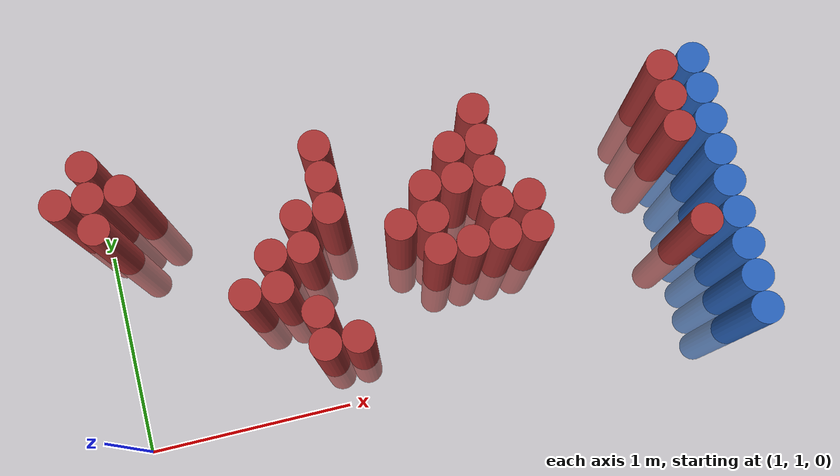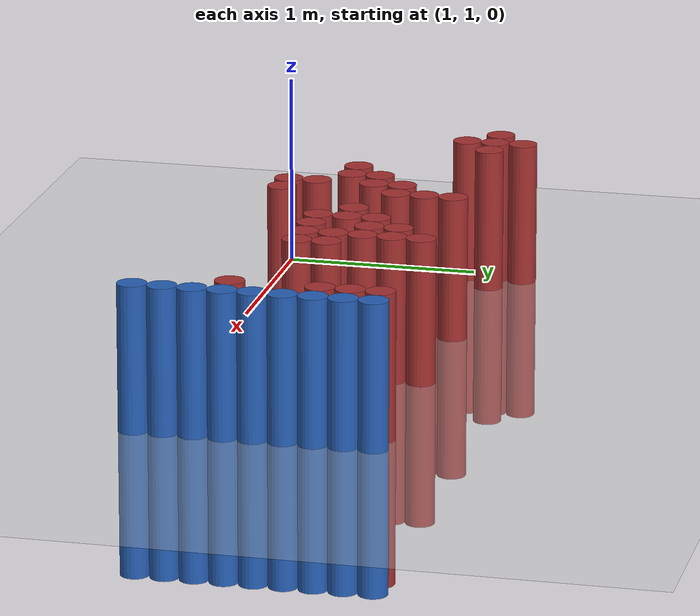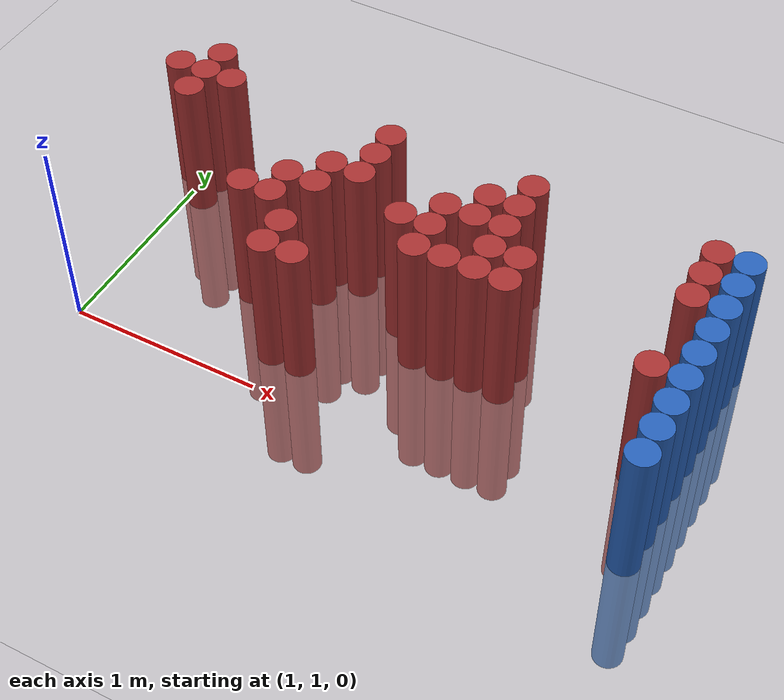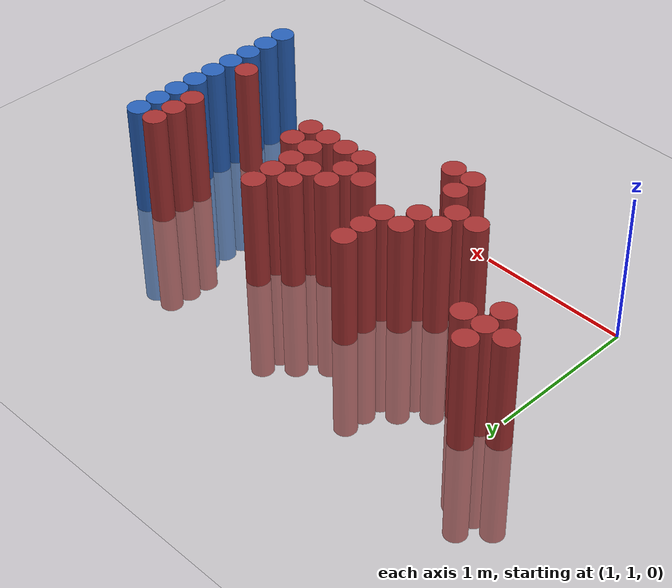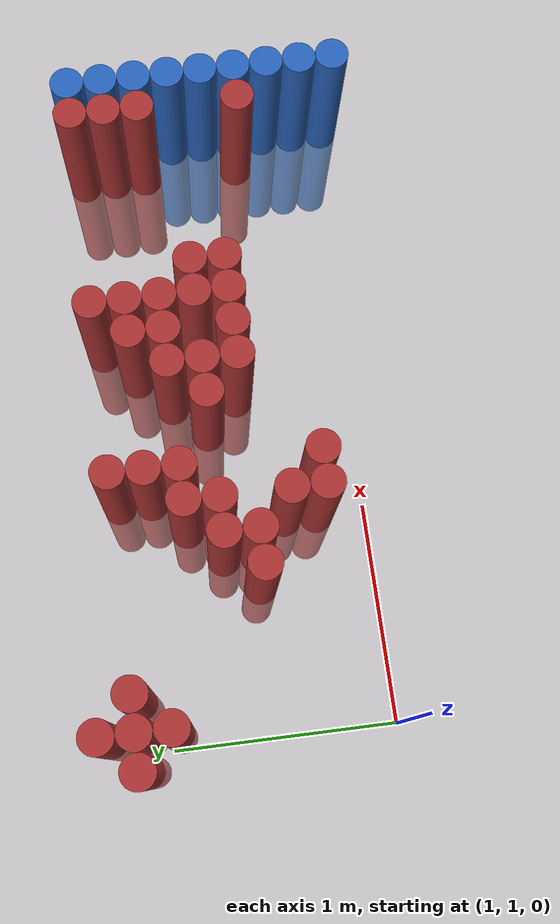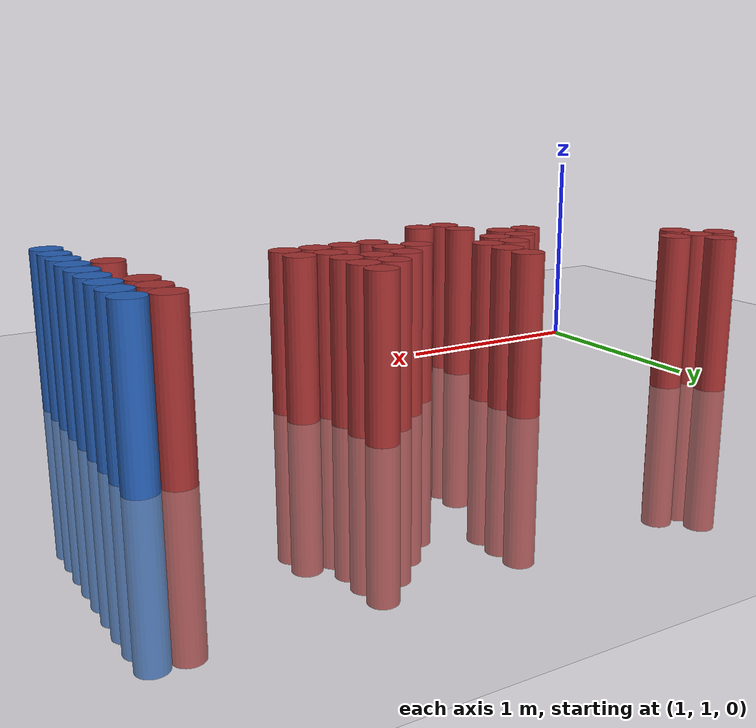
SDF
<sdf version="1.6">
 <world name="default">
  <model name="ground_plane">
   <static>1</static>
   <link name="link">
    <collision name="collision">
     <geometry><plane><normal>0 0 1</normal><size>100 100</size></plane></geometry>
     <surface><friction><ode><mu>100</mu><mu2>50</mu2></ode></friction></surface>
    </collision>
    <visual name="visual">
     <cast_shadows>0</cast_shadows>
     <geometry><plane><normal>0 0 1</normal><size>100 100</size></plane></geometry>
     <material>
      <script><uri>file://media/materials/scripts/gazebo.material</uri><name>Gazebo/Grey</name></script>
     </material>
    </visual>
   </link>
  </model>
  <model name="unit_cylinder_128">
   <static>1</static>
   <pose>3.925000 1.075000 0.000000 0.000000 0.000000 0.000000</pose>
   <link name="link">
    <inertial>
     <mass>1</mass>
     <inertia><ixx>0.145833</ixx><ixy>0</ixy><ixz>0</ixz><iyy>0.145833</iyy><iyz>0</iyz><izz>0.125</izz></inertia>
    </inertial>
    <collision name="collision">
     <geometry><cylinder><radius>0.075000</radius><length>1.5</length></cylinder></geometry>
    </collision>
    <visual name="visual">
     <geometry><cylinder><radius>0.075000</radius><length>1.5</length></cylinder></geometry>
     <material>
      <ambient>0.152000 0.379000 0.720000 1</ambient>
      <diffuse>0.152000 0.379000 0.720000 1</diffuse>
     </material>
     <material>
      <script><name>Gazebo/Grey</name><uri>file://media/materials/scripts/gazebo.material</uri></script>
     </material>
    </visual>
   </link>
  </model>
  <model name="unit_cylinder_130">
   <static>1</static>
   <pose>3.925000 1.225000 0.000000 0.000000 0.000000 0.000000</pose>
   <link name="link">
    <inertial>
     <mass>1</mass>
     <inertia><ixx>0.145833</ixx><ixy>0</ixy><ixz>0</ixz><iyy>0.145833</iyy><iyz>0</iyz><izz>0.125</izz></inertia>
    </inertial>
    <collision name="collision">
     <geometry><cylinder><radius>0.075000</radius><length>1.5</length></cylinder></geometry>
    </collision>
    <visual name="visual">
     <geometry><cylinder><radius>0.075000</radius><length>1.5</length></cylinder></geometry>
     <material>
      <ambient>0.152000 0.379000 0.720000 1</ambient>
      <diffuse>0.152000 0.379000 0.720000 1</diffuse>
     </material>
     <material>
      <script><name>Gazebo/Grey</name><uri>file://media/materials/scripts/gazebo.material</uri></script>
     </material>
    </visual>
   </link>
  </model>
  <model name="unit_cylinder_132">
   <static>1</static>
   <pose>3.925000 1.375000 0.000000 0.000000 0.000000 0.000000</pose>
   <link name="link">
    <inertial>
     <mass>1</mass>
     <inertia><ixx>0.145833</ixx><ixy>0</ixy><ixz>0</ixz><iyy>0.145833</iyy><iyz>0</iyz><izz>0.125</izz></inertia>
    </inertial>
    <collision name="collision">
     <geometry><cylinder><radius>0.075000</radius><length>1.5</length></cylinder></geometry>
    </collision>
    <visual name="visual">
     <geometry><cylinder><radius>0.075000</radius><length>1.5</length></cylinder></geometry>
     <material>
      <ambient>0.152000 0.379000 0.720000 1</ambient>
      <diffuse>0.152000 0.379000 0.720000 1</diffuse>
     </material>
     <material>
      <script><name>Gazebo/Grey</name><uri>file://media/materials/scripts/gazebo.material</uri></script>
     </material>
    </visual>
   </link>
  </model>
  <model name="unit_cylinder_134">
   <static>1</static>
   <pose>3.925000 1.525000 0.000000 0.000000 0.000000 0.000000</pose>
   <link name="link">
    <inertial>
     <mass>1</mass>
     <inertia><ixx>0.145833</ixx><ixy>0</ixy><ixz>0</ixz><iyy>0.145833</iyy><iyz>0</iyz><izz>0.125</izz></inertia>
    </inertial>
    <collision name="collision">
     <geometry><cylinder><radius>0.075000</radius><length>1.5</length></cylinder></geometry>
    </collision>
    <visual name="visual">
     <geometry><cylinder><radius>0.075000</radius><length>1.5</length></cylinder></geometry>
     <material>
      <ambient>0.152000 0.379000 0.720000 1</ambient>
      <diffuse>0.152000 0.379000 0.720000 1</diffuse>
     </material>
     <material>
      <script><name>Gazebo/Grey</name><uri>file://media/materials/scripts/gazebo.material</uri></script>
     </material>
    </visual>
   </link>
  </model>
  <model name="unit_cylinder_136">
   <static>1</static>
   <pose>3.925000 1.675000 0.000000 0.000000 0.000000 0.000000</pose>
   <link name="link">
    <inertial>
     <mass>1</mass>
     <inertia><ixx>0.145833</ixx><ixy>0</ixy><ixz>0</ixz><iyy>0.145833</iyy><iyz>0</iyz><izz>0.125</izz></inertia>
    </inertial>
    <collision name="collision">
     <geometry><cylinder><radius>0.075000</radius><length>1.5</length></cylinder></geometry>
    </collision>
    <visual name="visual">
     <geometry><cylinder><radius>0.075000</radius><length>1.5</length></cylinder></geometry>
     <material>
      <ambient>0.152000 0.379000 0.720000 1</ambient>
      <diffuse>0.152000 0.379000 0.720000 1</diffuse>
     </material>
     <material>
      <script><name>Gazebo/Grey</name><uri>file://media/materials/scripts/gazebo.material</uri></script>
     </material>
    </visual>
   </link>
  </model>
  <model name="unit_cylinder_138">
   <static>1</static>
   <pose>3.925000 1.825000 0.000000 0.000000 0.000000 0.000000</pose>
   <link name="link">
    <inertial>
     <mass>1</mass>
     <inertia><ixx>0.145833</ixx><ixy>0</ixy><ixz>0</ixz><iyy>0.145833</iyy><iyz>0</iyz><izz>0.125</izz></inertia>
    </inertial>
    <collision name="collision">
     <geometry><cylinder><radius>0.075000</radius><length>1.5</length></cylinder></geometry>
    </collision>
    <visual name="visual">
     <geometry><cylinder><radius>0.075000</radius><length>1.5</length></cylinder></geometry>
     <material>
      <ambient>0.152000 0.379000 0.720000 1</ambient>
      <diffuse>0.152000 0.379000 0.720000 1</diffuse>
     </material>
     <material>
      <script><name>Gazebo/Grey</name><uri>file://media/materials/scripts/gazebo.material</uri></script>
     </material>
    </visual>
   </link>
  </model>
  <model name="unit_cylinder_140">
   <static>1</static>
   <pose>3.925000 1.975000 0.000000 0.000000 0.000000 0.000000</pose>
   <link name="link">
    <inertial>
     <mass>1</mass>
     <inertia><ixx>0.145833</ixx><ixy>0</ixy><ixz>0</ixz><iyy>0.145833</iyy><iyz>0</iyz><izz>0.125</izz></inertia>
    </inertial>
    <collision name="collision">
     <geometry><cylinder><radius>0.075000</radius><length>1.5</length></cylinder></geometry>
    </collision>
    <visual name="visual">
     <geometry><cylinder><radius>0.075000</radius><length>1.5</length></cylinder></geometry>
     <material>
      <ambient>0.152000 0.379000 0.720000 1</ambient>
      <diffuse>0.152000 0.379000 0.720000 1</diffuse>
     </material>
     <material>
      <script><name>Gazebo/Grey</name><uri>file://media/materials/scripts/gazebo.material</uri></script>
     </material>
    </visual>
   </link>
  </model>
  <model name="unit_cylinder_142">
   <static>1</static>
   <pose>3.925000 2.125000 0.000000 0.000000 0.000000 0.000000</pose>
   <link name="link">
    <inertial>
     <mass>1</mass>
     <inertia><ixx>0.145833</ixx><ixy>0</ixy><ixz>0</ixz><iyy>0.145833</iyy><iyz>0</iyz><izz>0.125</izz></inertia>
    </inertial>
    <collision name="collision">
     <geometry><cylinder><radius>0.075000</radius><length>1.5</length></cylinder></geometry>
    </collision>
    <visual name="visual">
     <geometry><cylinder><radius>0.075000</radius><length>1.5</length></cylinder></geometry>
     <material>
      <ambient>0.152000 0.379000 0.720000 1</ambient>
      <diffuse>0.152000 0.379000 0.720000 1</diffuse>
     </material>
     <material>
      <script><name>Gazebo/Grey</name><uri>file://media/materials/scripts/gazebo.material</uri></script>
     </material>
    </visual>
   </link>
  </model>
  <model name="unit_cylinder_402">
   <static>1</static>
   <pose>0.925000 2.125000 0.000000 0.000000 0.000000 0.000000</pose>
   <link name="link">
    <inertial>
     <mass>1</mass>
     <inertia><ixx>0.145833</ixx><ixy>0</ixy><ixz>0</ixz><iyy>0.145833</iyy><iyz>0</iyz><izz>0.125</izz></inertia>
    </inertial>
    <collision name="collision">
     <geometry><cylinder><radius>0.075000</radius><length>1.5</length></cylinder></geometry>
    </collision>
    <visual name="visual">
     <geometry><cylinder><radius>0.075000</radius><length>1.5</length></cylinder></geometry>
     <material>
      <ambient>0.648000 0.192000 0.192000 1</ambient>
      <diffuse>0.648000 0.192000 0.192000 1</diffuse>
     </material>
     <material>
      <script><name>Gazebo/Grey</name><uri>file://media/materials/scripts/gazebo.material</uri></script>
     </material>
    </visual>
   </link>
  </model>
  <model name="unit_cylinder_406">
   <static>1</static>
   <pose>1.075000 1.975000 0.000000 0.000000 0.000000 0.000000</pose>
   <link name="link">
    <inertial>
     <mass>1</mass>
     <inertia><ixx>0.145833</ixx><ixy>0</ixy><ixz>0</ixz><iyy>0.145833</iyy><iyz>0</iyz><izz>0.125</izz></inertia>
    </inertial>
    <collision name="collision">
     <geometry><cylinder><radius>0.075000</radius><length>1.5</length></cylinder></geometry>
    </collision>
    <visual name="visual">
     <geometry><cylinder><radius>0.075000</radius><length>1.5</length></cylinder></geometry>
     <material>
      <ambient>0.648000 0.192000 0.192000 1</ambient>
      <diffuse>0.648000 0.192000 0.192000 1</diffuse>
     </material>
     <material>
      <script><name>Gazebo/Grey</name><uri>file://media/materials/scripts/gazebo.material</uri></script>
     </material>
    </visual>
   </link>
  </model>
  <model name="unit_cylinder_407">
   <static>1</static>
   <pose>1.075000 2.125000 0.000000 0.000000 0.000000 0.000000</pose>
   <link name="link">
    <inertial>
     <mass>1</mass>
     <inertia><ixx>0.145833</ixx><ixy>0</ixy><ixz>0</ixz><iyy>0.145833</iyy><iyz>0</iyz><izz>0.125</izz></inertia>
    </inertial>
    <collision name="collision">
     <geometry><cylinder><radius>0.075000</radius><length>1.5</length></cylinder></geometry>
    </collision>
    <visual name="visual">
     <geometry><cylinder><radius>0.075000</radius><length>1.5</length></cylinder></geometry>
     <material>
      <ambient>0.648000 0.192000 0.192000 1</ambient>
      <diffuse>0.648000 0.192000 0.192000 1</diffuse>
     </material>
     <material>
      <script><name>Gazebo/Grey</name><uri>file://media/materials/scripts/gazebo.material</uri></script>
     </material>
    </visual>
   </link>
  </model>
  <model name="unit_cylinder_408">
   <static>1</static>
   <pose>1.075000 2.275000 0.000000 0.000000 0.000000 0.000000</pose>
   <link name="link">
    <inertial>
     <mass>1</mass>
     <inertia><ixx>0.145833</ixx><ixy>0</ixy><ixz>0</ixz><iyy>0.145833</iyy><iyz>0</iyz><izz>0.125</izz></inertia>
    </inertial>
    <collision name="collision">
     <geometry><cylinder><radius>0.075000</radius><length>1.5</length></cylinder></geometry>
    </collision>
    <visual name="visual">
     <geometry><cylinder><radius>0.075000</radius><length>1.5</length></cylinder></geometry>
     <material>
      <ambient>0.648000 0.192000 0.192000 1</ambient>
      <diffuse>0.648000 0.192000 0.192000 1</diffuse>
     </material>
     <material>
      <script><name>Gazebo/Grey</name><uri>file://media/materials/scripts/gazebo.material</uri></script>
     </material>
    </visual>
   </link>
  </model>
  <model name="unit_cylinder_411">
   <static>1</static>
   <pose>1.225000 2.125000 0.000000 0.000000 0.000000 0.000000</pose>
   <link name="link">
    <inertial>
     <mass>1</mass>
     <inertia><ixx>0.145833</ixx><ixy>0</ixy><ixz>0</ixz><iyy>0.145833</iyy><iyz>0</iyz><izz>0.125</izz></inertia>
    </inertial>
    <collision name="collision">
     <geometry><cylinder><radius>0.075000</radius><length>1.5</length></cylinder></geometry>
    </collision>
    <visual name="visual">
     <geometry><cylinder><radius>0.075000</radius><length>1.5</length></cylinder></geometry>
     <material>
      <ambient>0.648000 0.192000 0.192000 1</ambient>
      <diffuse>0.648000 0.192000 0.192000 1</diffuse>
     </material>
     <material>
      <script><name>Gazebo/Grey</name><uri>file://media/materials/scripts/gazebo.material</uri></script>
     </material>
    </visual>
   </link>
  </model>
  <model name="unit_cylinder_426">
   <static>1</static>
   <pose>1.675000 1.525000 0.000000 0.000000 0.000000 0.000000</pose>
   <link name="link">
    <inertial>
     <mass>1</mass>
     <inertia><ixx>0.145833</ixx><ixy>0</ixy><ixz>0</ixz><iyy>0.145833</iyy><iyz>0</iyz><izz>0.125</izz></inertia>
    </inertial>
    <collision name="collision">
     <geometry><cylinder><radius>0.075000</radius><length>1.5</length></cylinder></geometry>
    </collision>
    <visual name="visual">
     <geometry><cylinder><radius>0.075000</radius><length>1.5</length></cylinder></geometry>
     <material>
      <ambient>0.648000 0.192000 0.192000 1</ambient>
      <diffuse>0.648000 0.192000 0.192000 1</diffuse>
     </material>
     <material>
      <script><name>Gazebo/Grey</name><uri>file://media/materials/scripts/gazebo.material</uri></script>
     </material>
    </visual>
   </link>
  </model>
  <model name="unit_cylinder_429">
   <static>1</static>
   <pose>1.825000 1.525000 0.000000 0.000000 0.000000 0.000000</pose>
   <link name="link">
    <inertial>
     <mass>1</mass>
     <inertia><ixx>0.145833</ixx><ixy>0</ixy><ixz>0</ixz><iyy>0.145833</iyy><iyz>0</iyz><izz>0.125</izz></inertia>
    </inertial>
    <collision name="collision">
     <geometry><cylinder><radius>0.075000</radius><length>1.5</length></cylinder></geometry>
    </collision>
    <visual name="visual">
     <geometry><cylinder><radius>0.075000</radius><length>1.5</length></cylinder></geometry>
     <material>
      <ambient>0.648000 0.192000 0.192000 1</ambient>
      <diffuse>0.648000 0.192000 0.192000 1</diffuse>
     </material>
     <material>
      <script><name>Gazebo/Grey</name><uri>file://media/materials/scripts/gazebo.material</uri></script>
     </material>
    </visual>
   </link>
  </model>
  <model name="unit_cylinder_430">
   <static>1</static>
   <pose>1.825000 1.675000 0.000000 0.000000 0.000000 0.000000</pose>
   <link name="link">
    <inertial>
     <mass>1</mass>
     <inertia><ixx>0.145833</ixx><ixy>0</ixy><ixz>0</ixz><iyy>0.145833</iyy><iyz>0</iyz><izz>0.125</izz></inertia>
    </inertial>
    <collision name="collision">
     <geometry><cylinder><radius>0.075000</radius><length>1.5</length></cylinder></geometry>
    </collision>
    <visual name="visual">
     <geometry><cylinder><radius>0.075000</radius><length>1.5</length></cylinder></geometry>
     <material>
      <ambient>0.648000 0.192000 0.192000 1</ambient>
      <diffuse>0.648000 0.192000 0.192000 1</diffuse>
     </material>
     <material>
      <script><name>Gazebo/Grey</name><uri>file://media/materials/scripts/gazebo.material</uri></script>
     </material>
    </visual>
   </link>
  </model>
  <model name="unit_cylinder_431">
   <static>1</static>
   <pose>1.975000 1.225000 0.000000 0.000000 0.000000 0.000000</pose>
   <link name="link">
    <inertial>
     <mass>1</mass>
     <inertia><ixx>0.145833</ixx><ixy>0</ixy><ixz>0</ixz><iyy>0.145833</iyy><iyz>0</iyz><izz>0.125</izz></inertia>
    </inertial>
    <collision name="collision">
     <geometry><cylinder><radius>0.075000</radius><length>1.5</length></cylinder></geometry>
    </collision>
    <visual name="visual">
     <geometry><cylinder><radius>0.075000</radius><length>1.5</length></cylinder></geometry>
     <material>
      <ambient>0.648000 0.192000 0.192000 1</ambient>
      <diffuse>0.648000 0.192000 0.192000 1</diffuse>
     </material>
     <material>
      <script><name>Gazebo/Grey</name><uri>file://media/materials/scripts/gazebo.material</uri></script>
     </material>
    </visual>
   </link>
  </model>
  <model name="unit_cylinder_432">
   <static>1</static>
   <pose>1.975000 1.375000 0.000000 0.000000 0.000000 0.000000</pose>
   <link name="link">
    <inertial>
     <mass>1</mass>
     <inertia><ixx>0.145833</ixx><ixy>0</ixy><ixz>0</ixz><iyy>0.145833</iyy><iyz>0</iyz><izz>0.125</izz></inertia>
    </inertial>
    <collision name="collision">
     <geometry><cylinder><radius>0.075000</radius><length>1.5</length></cylinder></geometry>
    </collision>
    <visual name="visual">
     <geometry><cylinder><radius>0.075000</radius><length>1.5</length></cylinder></geometry>
     <material>
      <ambient>0.648000 0.192000 0.192000 1</ambient>
      <diffuse>0.648000 0.192000 0.192000 1</diffuse>
     </material>
     <material>
      <script><name>Gazebo/Grey</name><uri>file://media/materials/scripts/gazebo.material</uri></script>
     </material>
    </visual>
   </link>
  </model>
  <model name="unit_cylinder_433">
   <static>1</static>
   <pose>1.975000 1.675000 0.000000 0.000000 0.000000 0.000000</pose>
   <link name="link">
    <inertial>
     <mass>1</mass>
     <inertia><ixx>0.145833</ixx><ixy>0</ixy><ixz>0</ixz><iyy>0.145833</iyy><iyz>0</iyz><izz>0.125</izz></inertia>
    </inertial>
    <collision name="collision">
     <geometry><cylinder><radius>0.075000</radius><length>1.5</length></cylinder></geometry>
    </collision>
    <visual name="visual">
     <geometry><cylinder><radius>0.075000</radius><length>1.5</length></cylinder></geometry>
     <material>
      <ambient>0.648000 0.192000 0.192000 1</ambient>
      <diffuse>0.648000 0.192000 0.192000 1</diffuse>
     </material>
     <material>
      <script><name>Gazebo/Grey</name><uri>file://media/materials/scripts/gazebo.material</uri></script>
     </material>
    </visual>
   </link>
  </model>
  <model name="unit_cylinder_434">
   <static>1</static>
   <pose>1.975000 1.825000 0.000000 0.000000 0.000000 0.000000</pose>
   <link name="link">
    <inertial>
     <mass>1</mass>
     <inertia><ixx>0.145833</ixx><ixy>0</ixy><ixz>0</ixz><iyy>0.145833</iyy><iyz>0</iyz><izz>0.125</izz></inertia>
    </inertial>
    <collision name="collision">
     <geometry><cylinder><radius>0.075000</radius><length>1.5</length></cylinder></geometry>
    </collision>
    <visual name="visual">
     <geometry><cylinder><radius>0.075000</radius><length>1.5</length></cylinder></geometry>
     <material>
      <ambient>0.648000 0.192000 0.192000 1</ambient>
      <diffuse>0.648000 0.192000 0.192000 1</diffuse>
     </material>
     <material>
      <script><name>Gazebo/Grey</name><uri>file://media/materials/scripts/gazebo.material</uri></script>
     </material>
    </visual>
   </link>
  </model>
  <model name="unit_cylinder_436">
   <static>1</static>
   <pose>2.125000 1.225000 0.000000 0.000000 0.000000 0.000000</pose>
   <link name="link">
    <inertial>
     <mass>1</mass>
     <inertia><ixx>0.145833</ixx><ixy>0</ixy><ixz>0</ixz><iyy>0.145833</iyy><iyz>0</iyz><izz>0.125</izz></inertia>
    </inertial>
    <collision name="collision">
     <geometry><cylinder><radius>0.075000</radius><length>1.5</length></cylinder></geometry>
    </collision>
    <visual name="visual">
     <geometry><cylinder><radius>0.075000</radius><length>1.5</length></cylinder></geometry>
     <material>
      <ambient>0.648000 0.192000 0.192000 1</ambient>
      <diffuse>0.648000 0.192000 0.192000 1</diffuse>
     </material>
     <material>
      <script><name>Gazebo/Grey</name><uri>file://media/materials/scripts/gazebo.material</uri></script>
     </material>
    </visual>
   </link>
  </model>
  <model name="unit_cylinder_437">
   <static>1</static>
   <pose>2.125000 1.825000 0.000000 0.000000 0.000000 0.000000</pose>
   <link name="link">
    <inertial>
     <mass>1</mass>
     <inertia><ixx>0.145833</ixx><ixy>0</ixy><ixz>0</ixz><iyy>0.145833</iyy><iyz>0</iyz><izz>0.125</izz></inertia>
    </inertial>
    <collision name="collision">
     <geometry><cylinder><radius>0.075000</radius><length>1.5</length></cylinder></geometry>
    </collision>
    <visual name="visual">
     <geometry><cylinder><radius>0.075000</radius><length>1.5</length></cylinder></geometry>
     <material>
      <ambient>0.648000 0.192000 0.192000 1</ambient>
      <diffuse>0.648000 0.192000 0.192000 1</diffuse>
     </material>
     <material>
      <script><name>Gazebo/Grey</name><uri>file://media/materials/scripts/gazebo.material</uri></script>
     </material>
    </visual>
   </link>
  </model>
  <model name="unit_cylinder_438">
   <static>1</static>
   <pose>2.125000 1.975000 0.000000 0.000000 0.000000 0.000000</pose>
   <link name="link">
    <inertial>
     <mass>1</mass>
     <inertia><ixx>0.145833</ixx><ixy>0</ixy><ixz>0</ixz><iyy>0.145833</iyy><iyz>0</iyz><izz>0.125</izz></inertia>
    </inertial>
    <collision name="collision">
     <geometry><cylinder><radius>0.075000</radius><length>1.5</length></cylinder></geometry>
    </collision>
    <visual name="visual">
     <geometry><cylinder><radius>0.075000</radius><length>1.5</length></cylinder></geometry>
     <material>
      <ambient>0.648000 0.192000 0.192000 1</ambient>
      <diffuse>0.648000 0.192000 0.192000 1</diffuse>
     </material>
     <material>
      <script><name>Gazebo/Grey</name><uri>file://media/materials/scripts/gazebo.material</uri></script>
     </material>
    </visual>
   </link>
  </model>
  <model name="unit_cylinder_439">
   <static>1</static>
   <pose>2.125000 2.125000 0.000000 0.000000 0.000000 0.000000</pose>
   <link name="link">
    <inertial>
     <mass>1</mass>
     <inertia><ixx>0.145833</ixx><ixy>0</ixy><ixz>0</ixz><iyy>0.145833</iyy><iyz>0</iyz><izz>0.125</izz></inertia>
    </inertial>
    <collision name="collision">
     <geometry><cylinder><radius>0.075000</radius><length>1.5</length></cylinder></geometry>
    </collision>
    <visual name="visual">
     <geometry><cylinder><radius>0.075000</radius><length>1.5</length></cylinder></geometry>
     <material>
      <ambient>0.648000 0.192000 0.192000 1</ambient>
      <diffuse>0.648000 0.192000 0.192000 1</diffuse>
     </material>
     <material>
      <script><name>Gazebo/Grey</name><uri>file://media/materials/scripts/gazebo.material</uri></script>
     </material>
    </visual>
   </link>
  </model>
  <model name="unit_cylinder_445">
   <static>1</static>
   <pose>2.425000 1.675000 0.000000 0.000000 0.000000 0.000000</pose>
   <link name="link">
    <inertial>
     <mass>1</mass>
     <inertia><ixx>0.145833</ixx><ixy>0</ixy><ixz>0</ixz><iyy>0.145833</iyy><iyz>0</iyz><izz>0.125</izz></inertia>
    </inertial>
    <collision name="collision">
     <geometry><cylinder><radius>0.075000</radius><length>1.5</length></cylinder></geometry>
    </collision>
    <visual name="visual">
     <geometry><cylinder><radius>0.075000</radius><length>1.5</length></cylinder></geometry>
     <material>
      <ambient>0.648000 0.192000 0.192000 1</ambient>
      <diffuse>0.648000 0.192000 0.192000 1</diffuse>
     </material>
     <material>
      <script><name>Gazebo/Grey</name><uri>file://media/materials/scripts/gazebo.material</uri></script>
     </material>
    </visual>
   </link>
  </model>
  <model name="unit_cylinder_453">
   <static>1</static>
   <pose>2.575000 1.525000 0.000000 0.000000 0.000000 0.000000</pose>
   <link name="link">
    <inertial>
     <mass>1</mass>
     <inertia><ixx>0.145833</ixx><ixy>0</ixy><ixz>0</ixz><iyy>0.145833</iyy><iyz>0</iyz><izz>0.125</izz></inertia>
    </inertial>
    <collision name="collision">
     <geometry><cylinder><radius>0.075000</radius><length>1.5</length></cylinder></geometry>
    </collision>
    <visual name="visual">
     <geometry><cylinder><radius>0.075000</radius><length>1.5</length></cylinder></geometry>
     <material>
      <ambient>0.648000 0.192000 0.192000 1</ambient>
      <diffuse>0.648000 0.192000 0.192000 1</diffuse>
     </material>
     <material>
      <script><name>Gazebo/Grey</name><uri>file://media/materials/scripts/gazebo.material</uri></script>
     </material>
    </visual>
   </link>
  </model>
  <model name="unit_cylinder_454">
   <static>1</static>
   <pose>2.575000 1.675000 0.000000 0.000000 0.000000 0.000000</pose>
   <link name="link">
    <inertial>
     <mass>1</mass>
     <inertia><ixx>0.145833</ixx><ixy>0</ixy><ixz>0</ixz><iyy>0.145833</iyy><iyz>0</iyz><izz>0.125</izz></inertia>
    </inertial>
    <collision name="collision">
     <geometry><cylinder><radius>0.075000</radius><length>1.5</length></cylinder></geometry>
    </collision>
    <visual name="visual">
     <geometry><cylinder><radius>0.075000</radius><length>1.5</length></cylinder></geometry>
     <material>
      <ambient>0.648000 0.192000 0.192000 1</ambient>
      <diffuse>0.648000 0.192000 0.192000 1</diffuse>
     </material>
     <material>
      <script><name>Gazebo/Grey</name><uri>file://media/materials/scripts/gazebo.material</uri></script>
     </material>
    </visual>
   </link>
  </model>
  <model name="unit_cylinder_455">
   <static>1</static>
   <pose>2.575000 1.825000 0.000000 0.000000 0.000000 0.000000</pose>
   <link name="link">
    <inertial>
     <mass>1</mass>
     <inertia><ixx>0.145833</ixx><ixy>0</ixy><ixz>0</ixz><iyy>0.145833</iyy><iyz>0</iyz><izz>0.125</izz></inertia>
    </inertial>
    <collision name="collision">
     <geometry><cylinder><radius>0.075000</radius><length>1.5</length></cylinder></geometry>
    </collision>
    <visual name="visual">
     <geometry><cylinder><radius>0.075000</radius><length>1.5</length></cylinder></geometry>
     <material>
      <ambient>0.648000 0.192000 0.192000 1</ambient>
      <diffuse>0.648000 0.192000 0.192000 1</diffuse>
     </material>
     <material>
      <script><name>Gazebo/Grey</name><uri>file://media/materials/scripts/gazebo.material</uri></script>
     </material>
    </visual>
   </link>
  </model>
  <model name="unit_cylinder_464">
   <static>1</static>
   <pose>2.725000 1.525000 0.000000 0.000000 0.000000 0.000000</pose>
   <link name="link">
    <inertial>
     <mass>1</mass>
     <inertia><ixx>0.145833</ixx><ixy>0</ixy><ixz>0</ixz><iyy>0.145833</iyy><iyz>0</iyz><izz>0.125</izz></inertia>
    </inertial>
    <collision name="collision">
     <geometry><cylinder><radius>0.075000</radius><length>1.5</length></cylinder></geometry>
    </collision>
    <visual name="visual">
     <geometry><cylinder><radius>0.075000</radius><length>1.5</length></cylinder></geometry>
     <material>
      <ambient>0.648000 0.192000 0.192000 1</ambient>
      <diffuse>0.648000 0.192000 0.192000 1</diffuse>
     </material>
     <material>
      <script><name>Gazebo/Grey</name><uri>file://media/materials/scripts/gazebo.material</uri></script>
     </material>
    </visual>
   </link>
  </model>
  <model name="unit_cylinder_465">
   <static>1</static>
   <pose>2.725000 1.825000 0.000000 0.000000 0.000000 0.000000</pose>
   <link name="link">
    <inertial>
     <mass>1</mass>
     <inertia><ixx>0.145833</ixx><ixy>0</ixy><ixz>0</ixz><iyy>0.145833</iyy><iyz>0</iyz><izz>0.125</izz></inertia>
    </inertial>
    <collision name="collision">
     <geometry><cylinder><radius>0.075000</radius><length>1.5</length></cylinder></geometry>
    </collision>
    <visual name="visual">
     <geometry><cylinder><radius>0.075000</radius><length>1.5</length></cylinder></geometry>
     <material>
      <ambient>0.648000 0.192000 0.192000 1</ambient>
      <diffuse>0.648000 0.192000 0.192000 1</diffuse>
     </material>
     <material>
      <script><name>Gazebo/Grey</name><uri>file://media/materials/scripts/gazebo.material</uri></script>
     </material>
    </visual>
   </link>
  </model>
  <model name="unit_cylinder_466">
   <static>1</static>
   <pose>2.725000 1.975000 0.000000 0.000000 0.000000 0.000000</pose>
   <link name="link">
    <inertial>
     <mass>1</mass>
     <inertia><ixx>0.145833</ixx><ixy>0</ixy><ixz>0</ixz><iyy>0.145833</iyy><iyz>0</iyz><izz>0.125</izz></inertia>
    </inertial>
    <collision name="collision">
     <geometry><cylinder><radius>0.075000</radius><length>1.5</length></cylinder></geometry>
    </collision>
    <visual name="visual">
     <geometry><cylinder><radius>0.075000</radius><length>1.5</length></cylinder></geometry>
     <material>
      <ambient>0.648000 0.192000 0.192000 1</ambient>
      <diffuse>0.648000 0.192000 0.192000 1</diffuse>
     </material>
     <material>
      <script><name>Gazebo/Grey</name><uri>file://media/materials/scripts/gazebo.material</uri></script>
     </material>
    </visual>
   </link>
  </model>
  <model name="unit_cylinder_474">
   <static>1</static>
   <pose>2.875000 1.525000 0.000000 0.000000 0.000000 0.000000</pose>
   <link name="link">
    <inertial>
     <mass>1</mass>
     <inertia><ixx>0.145833</ixx><ixy>0</ixy><ixz>0</ixz><iyy>0.145833</iyy><iyz>0</iyz><izz>0.125</izz></inertia>
    </inertial>
    <collision name="collision">
     <geometry><cylinder><radius>0.075000</radius><length>1.5</length></cylinder></geometry>
    </collision>
    <visual name="visual">
     <geometry><cylinder><radius>0.075000</radius><length>1.5</length></cylinder></geometry>
     <material>
      <ambient>0.648000 0.192000 0.192000 1</ambient>
      <diffuse>0.648000 0.192000 0.192000 1</diffuse>
     </material>
     <material>
      <script><name>Gazebo/Grey</name><uri>file://media/materials/scripts/gazebo.material</uri></script>
     </material>
    </visual>
   </link>
  </model>
  <model name="unit_cylinder_475">
   <static>1</static>
   <pose>2.875000 1.675000 0.000000 0.000000 0.000000 0.000000</pose>
   <link name="link">
    <inertial>
     <mass>1</mass>
     <inertia><ixx>0.145833</ixx><ixy>0</ixy><ixz>0</ixz><iyy>0.145833</iyy><iyz>0</iyz><izz>0.125</izz></inertia>
    </inertial>
    <collision name="collision">
     <geometry><cylinder><radius>0.075000</radius><length>1.5</length></cylinder></geometry>
    </collision>
    <visual name="visual">
     <geometry><cylinder><radius>0.075000</radius><length>1.5</length></cylinder></geometry>
     <material>
      <ambient>0.648000 0.192000 0.192000 1</ambient>
      <diffuse>0.648000 0.192000 0.192000 1</diffuse>
     </material>
     <material>
      <script><name>Gazebo/Grey</name><uri>file://media/materials/scripts/gazebo.material</uri></script>
     </material>
    </visual>
   </link>
  </model>
  <model name="unit_cylinder_476">
   <static>1</static>
   <pose>2.875000 1.825000 0.000000 0.000000 0.000000 0.000000</pose>
   <link name="link">
    <inertial>
     <mass>1</mass>
     <inertia><ixx>0.145833</ixx><ixy>0</ixy><ixz>0</ixz><iyy>0.145833</iyy><iyz>0</iyz><izz>0.125</izz></inertia>
    </inertial>
    <collision name="collision">
     <geometry><cylinder><radius>0.075000</radius><length>1.5</length></cylinder></geometry>
    </collision>
    <visual name="visual">
     <geometry><cylinder><radius>0.075000</radius><length>1.5</length></cylinder></geometry>
     <material>
      <ambient>0.648000 0.192000 0.192000 1</ambient>
      <diffuse>0.648000 0.192000 0.192000 1</diffuse>
     </material>
     <material>
      <script><name>Gazebo/Grey</name><uri>file://media/materials/scripts/gazebo.material</uri></script>
     </material>
    </visual>
   </link>
  </model>
  <model name="unit_cylinder_477">
   <static>1</static>
   <pose>2.875000 1.975000 0.000000 0.000000 0.000000 0.000000</pose>
   <link name="link">
    <inertial>
     <mass>1</mass>
     <inertia><ixx>0.145833</ixx><ixy>0</ixy><ixz>0</ixz><iyy>0.145833</iyy><iyz>0</iyz><izz>0.125</izz></inertia>
    </inertial>
    <collision name="collision">
     <geometry><cylinder><radius>0.075000</radius><length>1.5</length></cylinder></geometry>
    </collision>
    <visual name="visual">
     <geometry><cylinder><radius>0.075000</radius><length>1.5</length></cylinder></geometry>
     <material>
      <ambient>0.648000 0.192000 0.192000 1</ambient>
      <diffuse>0.648000 0.192000 0.192000 1</diffuse>
     </material>
     <material>
      <script><name>Gazebo/Grey</name><uri>file://media/materials/scripts/gazebo.material</uri></script>
     </material>
    </visual>
   </link>
  </model>
  <model name="unit_cylinder_478">
   <static>1</static>
   <pose>2.875000 2.125000 0.000000 0.000000 0.000000 0.000000</pose>
   <link name="link">
    <inertial>
     <mass>1</mass>
     <inertia><ixx>0.145833</ixx><ixy>0</ixy><ixz>0</ixz><iyy>0.145833</iyy><iyz>0</iyz><izz>0.125</izz></inertia>
    </inertial>
    <collision name="collision">
     <geometry><cylinder><radius>0.075000</radius><length>1.5</length></cylinder></geometry>
    </collision>
    <visual name="visual">
     <geometry><cylinder><radius>0.075000</radius><length>1.5</length></cylinder></geometry>
     <material>
      <ambient>0.648000 0.192000 0.192000 1</ambient>
      <diffuse>0.648000 0.192000 0.192000 1</diffuse>
     </material>
     <material>
      <script><name>Gazebo/Grey</name><uri>file://media/materials/scripts/gazebo.material</uri></script>
     </material>
    </visual>
   </link>
  </model>
  <model name="unit_cylinder_482">
   <static>1</static>
   <pose>3.025000 1.525000 0.000000 0.000000 0.000000 0.000000</pose>
   <link name="link">
    <inertial>
     <mass>1</mass>
     <inertia><ixx>0.145833</ixx><ixy>0</ixy><ixz>0</ixz><iyy>0.145833</iyy><iyz>0</iyz><izz>0.125</izz></inertia>
    </inertial>
    <collision name="collision">
     <geometry><cylinder><radius>0.075000</radius><length>1.5</length></cylinder></geometry>
    </collision>
    <visual name="visual">
     <geometry><cylinder><radius>0.075000</radius><length>1.5</length></cylinder></geometry>
     <material>
      <ambient>0.648000 0.192000 0.192000 1</ambient>
      <diffuse>0.648000 0.192000 0.192000 1</diffuse>
     </material>
     <material>
      <script><name>Gazebo/Grey</name><uri>file://media/materials/scripts/gazebo.material</uri></script>
     </material>
    </visual>
   </link>
  </model>
  <model name="unit_cylinder_483">
   <static>1</static>
   <pose>3.025000 1.675000 0.000000 0.000000 0.000000 0.000000</pose>
   <link name="link">
    <inertial>
     <mass>1</mass>
     <inertia><ixx>0.145833</ixx><ixy>0</ixy><ixz>0</ixz><iyy>0.145833</iyy><iyz>0</iyz><izz>0.125</izz></inertia>
    </inertial>
    <collision name="collision">
     <geometry><cylinder><radius>0.075000</radius><length>1.5</length></cylinder></geometry>
    </collision>
    <visual name="visual">
     <geometry><cylinder><radius>0.075000</radius><length>1.5</length></cylinder></geometry>
     <material>
      <ambient>0.648000 0.192000 0.192000 1</ambient>
      <diffuse>0.648000 0.192000 0.192000 1</diffuse>
     </material>
     <material>
      <script><name>Gazebo/Grey</name><uri>file://media/materials/scripts/gazebo.material</uri></script>
     </material>
    </visual>
   </link>
  </model>
  <model name="unit_cylinder_497">
   <static>1</static>
   <pose>3.775000 1.375000 0.000000 0.000000 0.000000 0.000000</pose>
   <link name="link">
    <inertial>
     <mass>1</mass>
     <inertia><ixx>0.145833</ixx><ixy>0</ixy><ixz>0</ixz><iyy>0.145833</iyy><iyz>0</iyz><izz>0.125</izz></inertia>
    </inertial>
    <collision name="collision">
     <geometry><cylinder><radius>0.075000</radius><length>1.5</length></cylinder></geometry>
    </collision>
    <visual name="visual">
     <geometry><cylinder><radius>0.075000</radius><length>1.5</length></cylinder></geometry>
     <material>
      <ambient>0.648000 0.192000 0.192000 1</ambient>
      <diffuse>0.648000 0.192000 0.192000 1</diffuse>
     </material>
     <material>
      <script><name>Gazebo/Grey</name><uri>file://media/materials/scripts/gazebo.material</uri></script>
     </material>
    </visual>
   </link>
  </model>
  <model name="unit_cylinder_498">
   <static>1</static>
   <pose>3.775000 1.825000 0.000000 0.000000 0.000000 0.000000</pose>
   <link name="link">
    <inertial>
     <mass>1</mass>
     <inertia><ixx>0.145833</ixx><ixy>0</ixy><ixz>0</ixz><iyy>0.145833</iyy><iyz>0</iyz><izz>0.125</izz></inertia>
    </inertial>
    <collision name="collision">
     <geometry><cylinder><radius>0.075000</radius><length>1.5</length></cylinder></geometry>
    </collision>
    <visual name="visual">
     <geometry><cylinder><radius>0.075000</radius><length>1.5</length></cylinder></geometry>
     <material>
      <ambient>0.648000 0.192000 0.192000 1</ambient>
      <diffuse>0.648000 0.192000 0.192000 1</diffuse>
     </material>
     <material>
      <script><name>Gazebo/Grey</name><uri>file://media/materials/scripts/gazebo.material</uri></script>
     </material>
    </visual>
   </link>
  </model>
  <model name="unit_cylinder_499">
   <static>1</static>
   <pose>3.775000 1.975000 0.000000 0.000000 0.000000 0.000000</pose>
   <link name="link">
    <inertial>
     <mass>1</mass>
     <inertia><ixx>0.145833</ixx><ixy>0</ixy><ixz>0</ixz><iyy>0.145833</iyy><iyz>0</iyz><izz>0.125</izz></inertia>
    </inertial>
    <collision name="collision">
     <geometry><cylinder><radius>0.075000</radius><length>1.5</length></cylinder></geometry>
    </collision>
    <visual name="visual">
     <geometry><cylinder><radius>0.075000</radius><length>1.5</length></cylinder></geometry>
     <material>
      <ambient>0.648000 0.192000 0.192000 1</ambient>
      <diffuse>0.648000 0.192000 0.192000 1</diffuse>
     </material>
     <material>
      <script><name>Gazebo/Grey</name><uri>file://media/materials/scripts/gazebo.material</uri></script>
     </material>
    </visual>
   </link>
  </model>
  <model name="unit_cylinder_500">
   <static>1</static>
   <pose>3.775000 2.125000 0.000000 0.000000 0.000000 0.000000</pose>
   <link name="link">
    <inertial>
     <mass>1</mass>
     <inertia><ixx>0.145833</ixx><ixy>0</ixy><ixz>0</ixz><iyy>0.145833</iyy><iyz>0</iyz><izz>0.125</izz></inertia>
    </inertial>
    <collision name="collision">
     <geometry><cylinder><radius>0.075000</radius><length>1.5</length></cylinder></geometry>
    </collision>
    <visual name="visual">
     <geometry><cylinder><radius>0.075000</radius><length>1.5</length></cylinder></geometry>
     <material>
      <ambient>0.648000 0.192000 0.192000 1</ambient>
      <diffuse>0.648000 0.192000 0.192000 1</diffuse>
     </material>
     <material>
      <script><name>Gazebo/Grey</name><uri>file://media/materials/scripts/gazebo.material</uri></script>
     </material>
    </visual>
   </link>
  </model>
  <model name="unit_cylinder_524">
   <static>1</static>
   <pose>3.925000 0.925000 0.000000 0.000000 0.000000 0.000000</pose>
   <link name="link">
    <inertial>
     <mass>1</mass>
     <inertia><ixx>0.145833</ixx><ixy>0</ixy><ixz>0</ixz><iyy>0.145833</iyy><iyz>0</iyz><izz>0.125</izz></inertia>
    </inertial>
    <collision name="collision">
     <geometry><cylinder><radius>0.075000</radius><length>1.5</length></cylinder></geometry>
    </collision>
    <visual name="visual">
     <geometry><cylinder><radius>0.075000</radius><length>1.5</length></cylinder></geometry>
     <material>
      <ambient>0.152000 0.379000 0.720000 1</ambient>
      <diffuse>0.152000 0.379000 0.720000 1</diffuse>
     </material>
     <material>
      <script><name>Gazebo/Grey</name><uri>file://media/materials/scripts/gazebo.material</uri></script>
     </material>
    </visual>
   </link>
  </model>
  <model name="unit_cylinder_525">
   <static>1</static>
   <pose>3.925000 1.075000 0.000000 0.000000 0.000000 0.000000</pose>
   <link name="link">
    <inertial>
     <mass>1</mass>
     <inertia><ixx>0.145833</ixx><ixy>0</ixy><ixz>0</ixz><iyy>0.145833</iyy><iyz>0</iyz><izz>0.125</izz></inertia>
    </inertial>
    <collision name="collision">
     <geometry><cylinder><radius>0.075000</radius><length>1.5</length></cylinder></geometry>
    </collision>
    <visual name="visual">
     <geometry><cylinder><radius>0.075000</radius><length>1.5</length></cylinder></geometry>
     <material>
      <ambient>0.152000 0.379000 0.720000 1</ambient>
      <diffuse>0.152000 0.379000 0.720000 1</diffuse>
     </material>
     <material>
      <script><name>Gazebo/Grey</name><uri>file://media/materials/scripts/gazebo.material</uri></script>
     </material>
    </visual>
   </link>
  </model>
  <model name="unit_cylinder_526">
   <static>1</static>
   <pose>3.925000 1.225000 0.000000 0.000000 0.000000 0.000000</pose>
   <link name="link">
    <inertial>
     <mass>1</mass>
     <inertia><ixx>0.145833</ixx><ixy>0</ixy><ixz>0</ixz><iyy>0.145833</iyy><iyz>0</iyz><izz>0.125</izz></inertia>
    </inertial>
    <collision name="collision">
     <geometry><cylinder><radius>0.075000</radius><length>1.5</length></cylinder></geometry>
    </collision>
    <visual name="visual">
     <geometry><cylinder><radius>0.075000</radius><length>1.5</length></cylinder></geometry>
     <material>
      <ambient>0.152000 0.379000 0.720000 1</ambient>
      <diffuse>0.152000 0.379000 0.720000 1</diffuse>
     </material>
     <material>
      <script><name>Gazebo/Grey</name><uri>file://media/materials/scripts/gazebo.material</uri></script>
     </material>
    </visual>
   </link>
  </model>
  <model name="unit_cylinder_527">
   <static>1</static>
   <pose>3.925000 1.375000 0.000000 0.000000 0.000000 0.000000</pose>
   <link name="link">
    <inertial>
     <mass>1</mass>
     <inertia><ixx>0.145833</ixx><ixy>0</ixy><ixz>0</ixz><iyy>0.145833</iyy><iyz>0</iyz><izz>0.125</izz></inertia>
    </inertial>
    <collision name="collision">
     <geometry><cylinder><radius>0.075000</radius><length>1.5</length></cylinder></geometry>
    </collision>
    <visual name="visual">
     <geometry><cylinder><radius>0.075000</radius><length>1.5</length></cylinder></geometry>
     <material>
      <ambient>0.152000 0.379000 0.720000 1</ambient>
      <diffuse>0.152000 0.379000 0.720000 1</diffuse>
     </material>
     <material>
      <script><name>Gazebo/Grey</name><uri>file://media/materials/scripts/gazebo.material</uri></script>
     </material>
    </visual>
   </link>
  </model>
  <model name="unit_cylinder_528">
   <static>1</static>
   <pose>3.925000 1.525000 0.000000 0.000000 0.000000 0.000000</pose>
   <link name="link">
    <inertial>
     <mass>1</mass>
     <inertia><ixx>0.145833</ixx><ixy>0</ixy><ixz>0</ixz><iyy>0.145833</iyy><iyz>0</iyz><izz>0.125</izz></inertia>
    </inertial>
    <collision name="collision">
     <geometry><cylinder><radius>0.075000</radius><length>1.5</length></cylinder></geometry>
    </collision>
    <visual name="visual">
     <geometry><cylinder><radius>0.075000</radius><length>1.5</length></cylinder></geometry>
     <material>
      <ambient>0.152000 0.379000 0.720000 1</ambient>
      <diffuse>0.152000 0.379000 0.720000 1</diffuse>
     </material>
     <material>
      <script><name>Gazebo/Grey</name><uri>file://media/materials/scripts/gazebo.material</uri></script>
     </material>
    </visual>
   </link>
  </model>
  <model name="unit_cylinder_529">
   <static>1</static>
   <pose>3.925000 1.675000 0.000000 0.000000 0.000000 0.000000</pose>
   <link name="link">
    <inertial>
     <mass>1</mass>
     <inertia><ixx>0.145833</ixx><ixy>0</ixy><ixz>0</ixz><iyy>0.145833</iyy><iyz>0</iyz><izz>0.125</izz></inertia>
    </inertial>
    <collision name="collision">
     <geometry><cylinder><radius>0.075000</radius><length>1.5</length></cylinder></geometry>
    </collision>
    <visual name="visual">
     <geometry><cylinder><radius>0.075000</radius><length>1.5</length></cylinder></geometry>
     <material>
      <ambient>0.152000 0.379000 0.720000 1</ambient>
      <diffuse>0.152000 0.379000 0.720000 1</diffuse>
     </material>
     <material>
      <script><name>Gazebo/Grey</name><uri>file://media/materials/scripts/gazebo.material</uri></script>
     </material>
    </visual>
   </link>
  </model>
  <model name="unit_cylinder_530">
   <static>1</static>
   <pose>3.925000 1.825000 0.000000 0.000000 0.000000 0.000000</pose>
   <link name="link">
    <inertial>
     <mass>1</mass>
     <inertia><ixx>0.145833</ixx><ixy>0</ixy><ixz>0</ixz><iyy>0.145833</iyy><iyz>0</iyz><izz>0.125</izz></inertia>
    </inertial>
    <collision name="collision">
     <geometry><cylinder><radius>0.075000</radius><length>1.5</length></cylinder></geometry>
    </collision>
    <visual name="visual">
     <geometry><cylinder><radius>0.075000</radius><length>1.5</length></cylinder></geometry>
     <material>
      <ambient>0.152000 0.379000 0.720000 1</ambient>
      <diffuse>0.152000 0.379000 0.720000 1</diffuse>
     </material>
     <material>
      <script><name>Gazebo/Grey</name><uri>file://media/materials/scripts/gazebo.material</uri></script>
     </material>
    </visual>
   </link>
  </model>
  <model name="unit_cylinder_531">
   <static>1</static>
   <pose>3.925000 1.975000 0.000000 0.000000 0.000000 0.000000</pose>
   <link name="link">
    <inertial>
     <mass>1</mass>
     <inertia><ixx>0.145833</ixx><ixy>0</ixy><ixz>0</ixz><iyy>0.145833</iyy><iyz>0</iyz><izz>0.125</izz></inertia>
    </inertial>
    <collision name="collision">
     <geometry><cylinder><radius>0.075000</radius><length>1.5</length></cylinder></geometry>
    </collision>
    <visual name="visual">
     <geometry><cylinder><radius>0.075000</radius><length>1.5</length></cylinder></geometry>
     <material>
      <ambient>0.152000 0.379000 0.720000 1</ambient>
      <diffuse>0.152000 0.379000 0.720000 1</diffuse>
     </material>
     <material>
      <script><name>Gazebo/Grey</name><uri>file://media/materials/scripts/gazebo.material</uri></script>
     </material>
    </visual>
   </link>
  </model>
  <model name="unit_cylinder_532">
   <static>1</static>
   <pose>3.925000 2.125000 0.000000 0.000000 0.000000 0.000000</pose>
   <link name="link">
    <inertial>
     <mass>1</mass>
     <inertia><ixx>0.145833</ixx><ixy>0</ixy><ixz>0</ixz><iyy>0.145833</iyy><iyz>0</iyz><izz>0.125</izz></inertia>
    </inertial>
    <collision name="collision">
     <geometry><cylinder><radius>0.075000</radius><length>1.5</length></cylinder></geometry>
    </collision>
    <visual name="visual">
     <geometry><cylinder><radius>0.075000</radius><length>1.5</length></cylinder></geometry>
     <material>
      <ambient>0.152000 0.379000 0.720000 1</ambient>
      <diffuse>0.152000 0.379000 0.720000 1</diffuse>
     </material>
     <material>
      <script><name>Gazebo/Grey</name><uri>file://media/materials/scripts/gazebo.material</uri></script>
     </material>
    </visual>
   </link>
  </model>
 </world>
</sdf>
